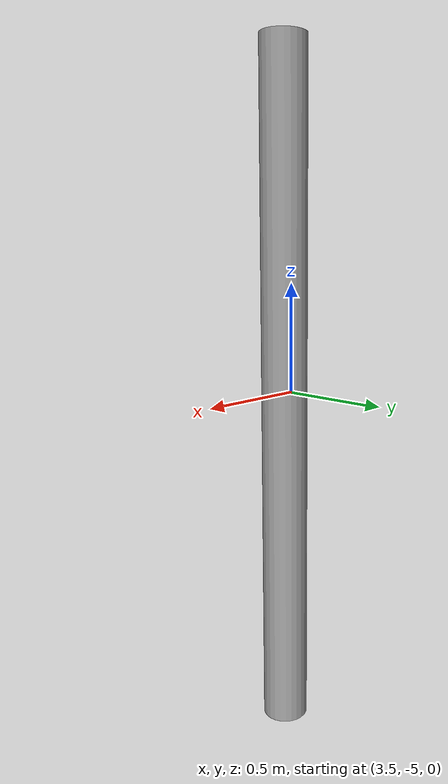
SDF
<?xml version="1.0" ?>
<sdf version="1.5">
  <model name="circular_reflector">
    <!-- Mô hình tĩnh trong thế giới -->
    <static>1</static>

    <!-- Vị trí và hướng -->
    <pose frame="">3.6685 -4.88865 0 0 0 0</pose>

    <link name="link">
      <!-- Thông số quán tính -->
      <inertial>
        <mass>1</mass>
        <inertia>
          <ixx>0</ixx>
          <ixy>0</ixy>
          <ixz>0</ixz>
          <iyy>0</iyy>
          <iyz>0</iyz>
          <izz>0</izz>
        </inertia>
      </inertial>

      <!-- Collision geometry -->
      <collision name="collision">
        <laser_retro>1000.0</laser_retro>
        <geometry>
          <cylinder>
            <radius>0.05</radius>
            <length>1</length>
          </cylinder>
        </geometry>
        <max_contacts>10</max_contacts>
        <surface>
          <contact>
            <ode/>
          </contact>
          <bounce/>
          <friction>
            <torsional>
              <ode/>
            </torsional>
            <ode/>
          </friction>
        </surface>
      </collision>

      <!-- Visual geometry -->
      <visual name="visual">
        <geometry>
          <cylinder>
            <radius>0.1</radius>
            <length>3</length>
          </cylinder>
        </geometry>
        <material>
          <script>
            <name>Gazebo/Grey</name>
            <uri>file://media/materials/scripts/gazebo.material</uri>
          </script>
          <ambient>1 1 1 1</ambient>
          <diffuse>1 1 1 1</diffuse>
          <specular>1 1 1 1</specular>
          <emissive>1 1 1 1</emissive>
        </material>
        <!-- Giá trị laser_retro để lidar đọc intensity -->
        <laser_retro>1000.0</laser_retro>
      </visual>

      <self_collide>0</self_collide>
      <kinematic>0</kinematic>
      <gravity>1</gravity>
    </link>
  </model>
</sdf>
